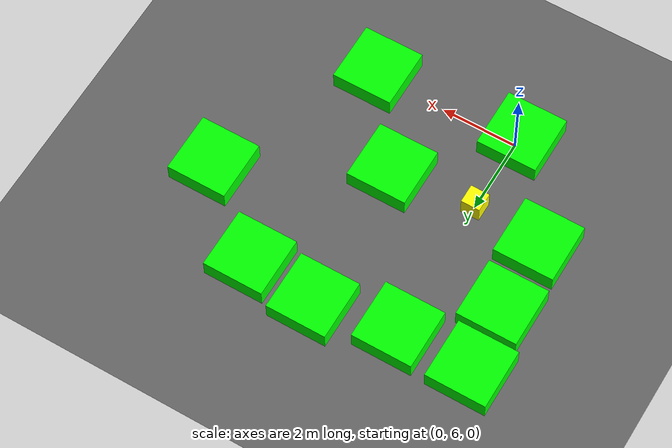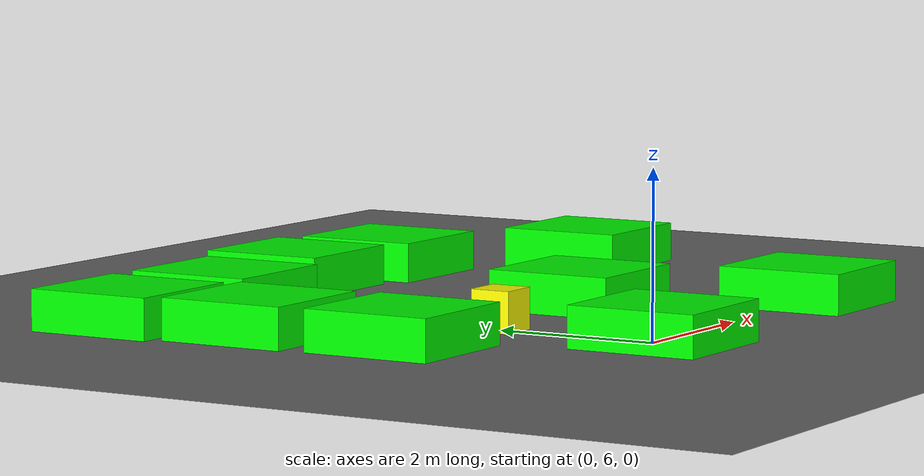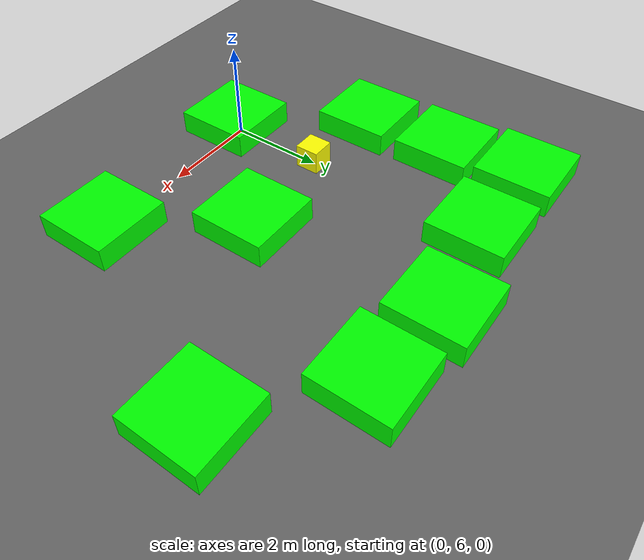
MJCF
<mujoco model="lvl5_deadend_obs10_d15_depth4_seed0">
    <compiler angle="degree" coordinate="local" inertiafromgeom="true"/>
    <option integrator="RK4" timestep="0.01"/>

    <asset>
        <texture builtin="gradient" height="100" rgb1="0.6 0.8 1" rgb2="0 0 0" type="skybox" width="100"/>
        <texture name="floor_texture" type="2d" builtin="checker" width="100" height="100" rgb1="0 0 0" rgb2="0.8 0.8 0.8"/>
        <material name="MatPlane" reflectance="0.5" shininess="1" specular="1" texrepeat="10 10" texture="floor_texture"/>
    </asset>

    <!-- Excluding the contact between the agent and the goal, and the agent and the floor -->
    <contact>
        <exclude body1="agent" body2="goal"/>
        <exclude body1 = "agent" body2 = "floor"/>
    </contact>

    <extension>
        <plugin plugin = "mujoco.pid">
            <instance name = "pid1">
                <config key="kp" value="2"/>
                <config key="ki" value="0"/>
                <config key="kd" value="55"/>
            </instance>
        </plugin>
    </extension>

    <worldbody>
        <light cutoff="100" diffuse="1 1 1" dir="-0 0 -1.3" directional="true" exponent="1" pos="0 0 1.3" specular=".1 .1 .1"/>
        <body name="floor" pos="0 0 0">
            <geom name="floor_geom" type="plane" size="20 20 0.1" material="MatPlane"/>
        </body>

                <body name="goal" pos="12.0000 -12.0000 0">
            <geom name="goal_geom" type="plane" size="0.5 0.5 1" pos="0 0 0" rgba="1 0 0 1"/>
        </body>

                <body name="agent" pos="0.0000 8.0000 0.250">
            <joint name="j1" type="slide" axis ="1 0 0 "/>
            <joint name="j2" type="slide" axis ="0 1 0 "/>
            <geom name="agent_geom" type="box" size="0.25 0.25 0.250" rgba="1 1 0 1"/>
        </body>

        <body name="obstacle1" pos="-2.0545 11.8263 0.250">  <geom name="obstacle1_geom" type="box" size="0.8000 0.8000 0.250" rgba="0 1 0 1"/></body>
        <body name="obstacle2" pos="-0.0900 11.8090 0.250">  <geom name="obstacle2_geom" type="box" size="0.8000 0.8000 0.250" rgba="0 1 0 1"/></body>
        <body name="obstacle3" pos="2.0044 12.1680 0.250">  <geom name="obstacle3_geom" type="box" size="0.8000 0.8000 0.250" rgba="0 1 0 1"/></body>
        <body name="obstacle4" pos="3.8553 11.9628 0.250">  <geom name="obstacle4_geom" type="box" size="0.8000 0.8000 0.250" rgba="0 1 0 1"/></body>
        <body name="obstacle5" pos="-1.8983 10.0914 0.250">  <geom name="obstacle5_geom" type="box" size="0.8000 0.8000 0.250" rgba="0 1 0 1"/></body>
        <body name="obstacle6" pos="5.9884 10.1961 0.250">  <geom name="obstacle6_geom" type="box" size="0.8000 0.8000 0.250" rgba="0 1 0 1"/></body>
        <body name="obstacle7" pos="-1.8340 8.1973 0.250">  <geom name="obstacle7_geom" type="box" size="0.8000 0.8000 0.250" rgba="0 1 0 1"/></body>
        <body name="obstacle8" pos="2.1848 8.1778 0.250">  <geom name="obstacle8_geom" type="box" size="0.8000 0.8000 0.250" rgba="0 1 0 1"/></body>
        <body name="obstacle9" pos="-0.0722 5.8202 0.250">  <geom name="obstacle9_geom" type="box" size="0.8000 0.8000 0.250" rgba="0 1 0 1"/></body>
        <body name="obstacle10" pos="3.8865 5.9572 0.250">  <geom name="obstacle10_geom" type="box" size="0.8000 0.8000 0.250" rgba="0 1 0 1"/></body>

    </worldbody>

    <sensor>
<!-- SENSORS -->

        <distance name="dist1" geom1="agent_geom" geom2="obstacle1_geom" cutoff="1.5"/>
        <distance name="dist2" geom1="agent_geom" geom2="obstacle2_geom" cutoff="1.5"/>
        <distance name="dist3" geom1="agent_geom" geom2="obstacle3_geom" cutoff="1.5"/>
        <distance name="dist4" geom1="agent_geom" geom2="obstacle4_geom" cutoff="1.5"/>
        <distance name="dist5" geom1="agent_geom" geom2="obstacle5_geom" cutoff="1.5"/>
        <distance name="dist6" geom1="agent_geom" geom2="obstacle6_geom" cutoff="1.5"/>
        <distance name="dist7" geom1="agent_geom" geom2="obstacle7_geom" cutoff="1.5"/>
        <distance name="dist8" geom1="agent_geom" geom2="obstacle8_geom" cutoff="1.5"/>
        <distance name="dist9" geom1="agent_geom" geom2="obstacle9_geom" cutoff="1.5"/>
        <distance name="dist10" geom1="agent_geom" geom2="obstacle10_geom" cutoff="1.5"/>
</sensor>

    <actuator>
        <plugin joint="j1" plugin="mujoco.pid" instance="pid1" />
        <plugin joint="j2" plugin="mujoco.pid" instance="pid1"/>
    </actuator>
</mujoco>
